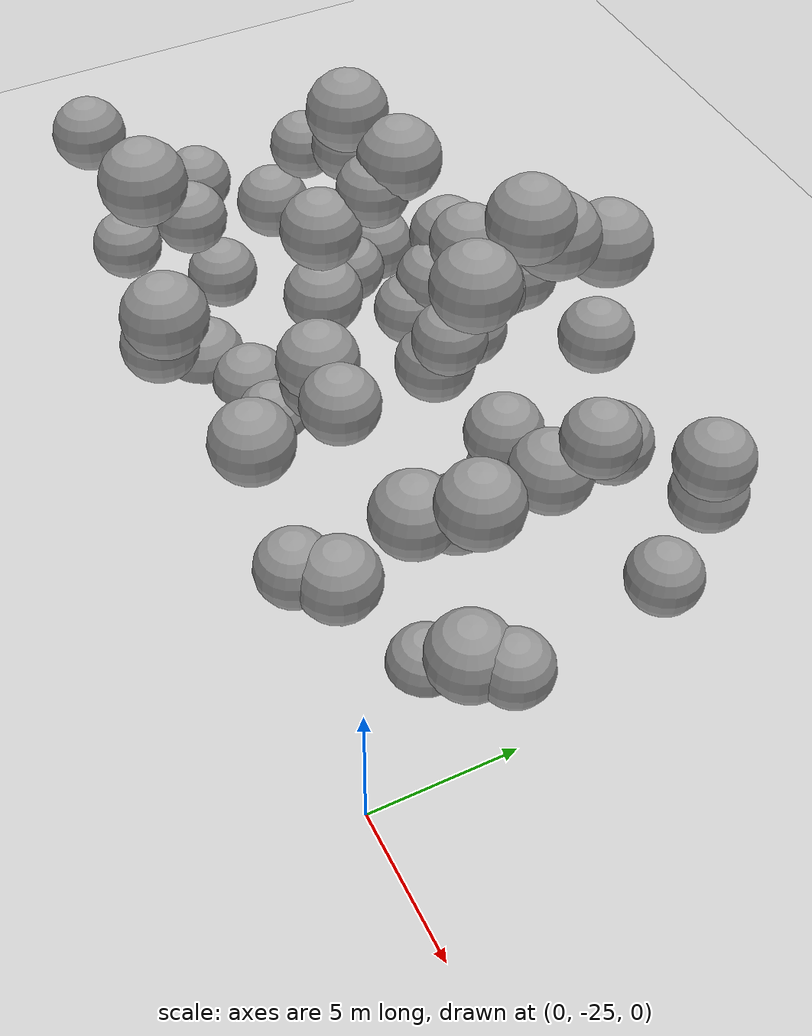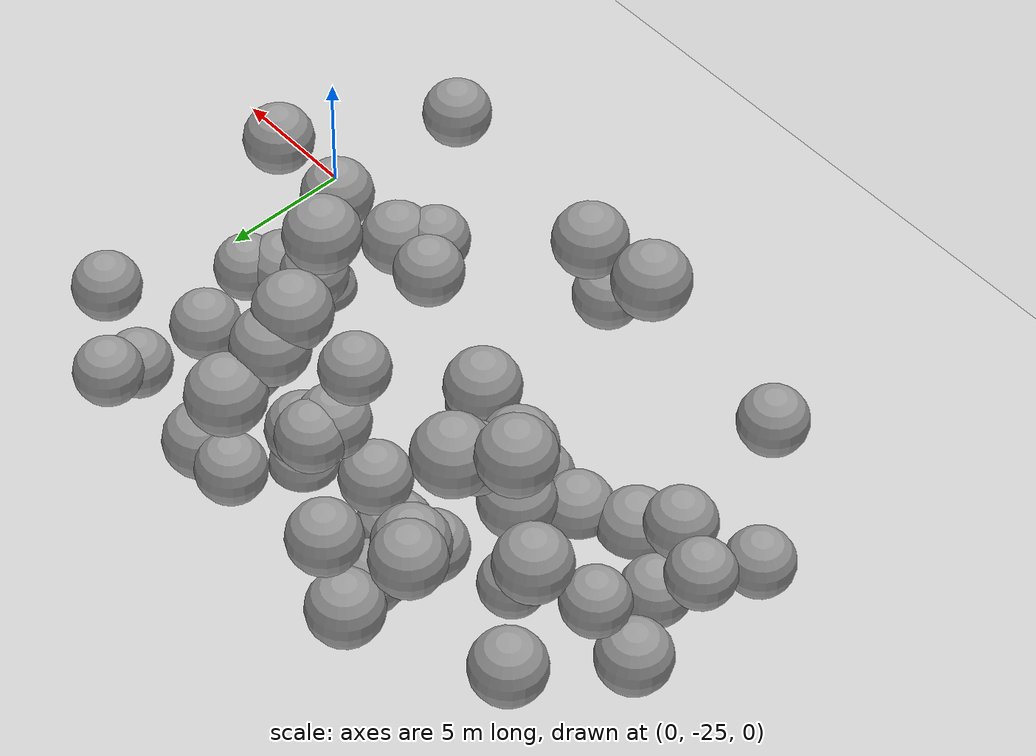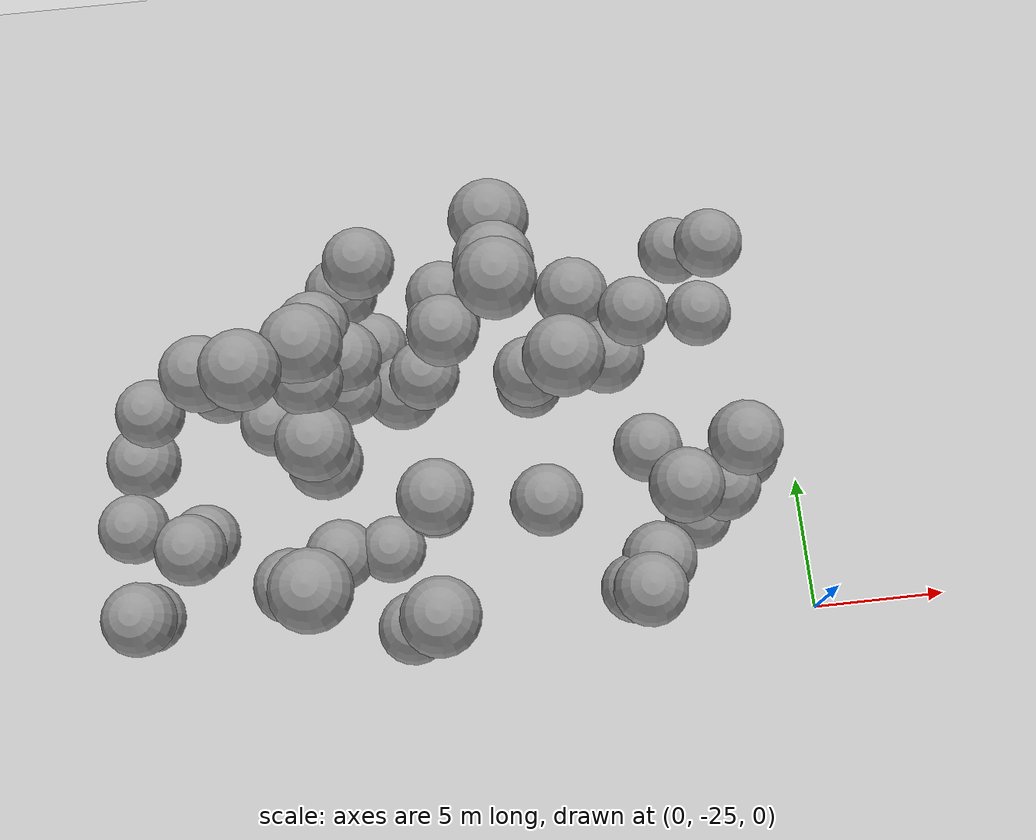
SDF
<sdf version="1.7">
 <world name="default">
  <model name="ground_plane">
   <static>1</static>
   <link name="link">
    <collision name="collision">
     <geometry><plane><normal>0 0 1</normal><size>100 100</size></plane></geometry>
     <surface>
      <contact><collide_bitmask>65535</collide_bitmask></contact>
      <friction><ode><mu>100</mu><mu2>50</mu2></ode></friction>
     </surface>
    </collision>
    <visual name="visual">
     <cast_shadows>0</cast_shadows>
     <geometry><plane><normal>0 0 1</normal><size>100 100</size></plane></geometry>
     <material>
      <script><uri>file://media/materials/scripts/gazebo.material</uri><name>Gazebo/Grey</name></script>
     </material>
    </visual>
   </link>
  </model>
  <model name="sphere_5">
   <static>1</static>
   <pose>-4 -11 3 0 0 0</pose>
   <link name="link">
    <inertial>
     <mass>911.1555626264419</mass>
     <inertia>
      <ixx>611.8643311993161</ixx>
      <iyy>611.8643311993161</iyy>
      <izz>611.8643311993161</izz>
      <ixy>0</ixy>
      <ixz>0</ixz>
      <iyz>0</iyz>
     </inertia>
    </inertial>
    <collision name="collision">
     <geometry><sphere><radius>1.2956905974533777</radius></sphere></geometry>
    </collision>
    <visual name="visual">
     <geometry><sphere><radius>1.2956905974533777</radius></sphere></geometry>
     <material>
      <script><uri>file://media/materials/scripts/gazebo.material</uri><name>Gazebo/Grey</name></script>
     </material>
    </visual>
   </link>
  </model>
  <model name="sphere_6">
   <static>1</static>
   <pose>-2 -19 1 0 0 0</pose>
   <link name="link">
    <inertial>
     <mass>893.9040352386924</mass>
     <inertia>
      <ixx>592.6783749071067</ixx>
      <iyy>592.6783749071067</iyy>
      <izz>592.6783749071067</izz>
      <ixy>0</ixy>
      <ixz>0</ixz>
      <iyz>0</iyz>
     </inertia>
    </inertial>
    <collision name="collision">
     <geometry><sphere><radius>1.2874610414067271</radius></sphere></geometry>
    </collision>
    <visual name="visual">
     <geometry><sphere><radius>1.2874610414067271</radius></sphere></geometry>
     <material>
      <script><uri>file://media/materials/scripts/gazebo.material</uri><name>Gazebo/Grey</name></script>
     </material>
    </visual>
   </link>
  </model>
  <model name="sphere_8">
   <static>1</static>
   <pose>-3 -20 8 0 0 0</pose>
   <link name="link">
    <inertial>
     <mass>945.1358322652695</mass>
     <inertia>
      <ixx>650.3662052603468</ixx>
      <iyy>650.3662052603468</iyy>
      <izz>650.3662052603468</izz>
      <ixy>0</ixy>
      <ixz>0</ixz>
      <iyz>0</iyz>
     </inertia>
    </inertial>
    <collision name="collision">
     <geometry><sphere><radius>1.3116014046180922</radius></sphere></geometry>
    </collision>
    <visual name="visual">
     <geometry><sphere><radius>1.3116014046180922</radius></sphere></geometry>
     <material>
      <script><uri>file://media/materials/scripts/gazebo.material</uri><name>Gazebo/Grey</name></script>
     </material>
    </visual>
   </link>
  </model>
  <model name="sphere_25">
   <static>1</static>
   <pose>-16 -13 1 0 0 0</pose>
   <link name="link">
    <inertial>
     <mass>1045.2013214133608</mass>
     <inertia>
      <ixx>769.1319196404364</ixx>
      <iyy>769.1319196404364</iyy>
      <izz>769.1319196404364</izz>
      <ixy>0</ixy>
      <ixz>0</ixz>
      <iyz>0</iyz>
     </inertia>
    </inertial>
    <collision name="collision">
     <geometry><sphere><radius>1.356345862552236</radius></sphere></geometry>
    </collision>
    <visual name="visual">
     <geometry><sphere><radius>1.356345862552236</radius></sphere></geometry>
     <material>
      <script><uri>file://media/materials/scripts/gazebo.material</uri><name>Gazebo/Grey</name></script>
     </material>
    </visual>
   </link>
  </model>
  <model name="sphere_35">
   <static>1</static>
   <pose>-6 -19 4 0 0 0</pose>
   <link name="link">
    <inertial>
     <mass>884.3200558352077</mass>
     <inertia>
      <ixx>582.125614726622</ixx>
      <iyy>582.125614726622</iyy>
      <izz>582.125614726622</izz>
      <ixy>0</ixy>
      <ixz>0</ixz>
      <iyz>0</iyz>
     </inertia>
    </inertial>
    <collision name="collision">
     <geometry><sphere><radius>1.2828433338973109</radius></sphere></geometry>
    </collision>
    <visual name="visual">
     <geometry><sphere><radius>1.2828433338973109</radius></sphere></geometry>
     <material>
      <script><uri>file://media/materials/scripts/gazebo.material</uri><name>Gazebo/Grey</name></script>
     </material>
    </visual>
   </link>
  </model>
  <model name="sphere_38">
   <static>1</static>
   <pose>-9 -17 10 0 0 0</pose>
   <link name="link">
    <inertial>
     <mass>1162.2410811386037</mass>
     <inertia>
      <ixx>917.9688735033643</ixx>
      <iyy>917.9688735033643</iyy>
      <izz>917.9688735033643</izz>
      <ixy>0</ixy>
      <ixz>0</ixz>
      <iyz>0</iyz>
     </inertia>
    </inertial>
    <collision name="collision">
     <geometry><sphere><radius>1.4051926546801257</radius></sphere></geometry>
    </collision>
    <visual name="visual">
     <geometry><sphere><radius>1.4051926546801257</radius></sphere></geometry>
     <material>
      <script><uri>file://media/materials/scripts/gazebo.material</uri><name>Gazebo/Grey</name></script>
     </material>
    </visual>
   </link>
  </model>
  <model name="sphere_39">
   <static>1</static>
   <pose>-18 -15 8 0 0 0</pose>
   <link name="link">
    <inertial>
     <mass>1377.4414114705146</mass>
     <inertia>
      <ixx>1218.3988421671536</ixx>
      <iyy>1218.3988421671536</iyy>
      <izz>1218.3988421671536</izz>
      <ixy>0</ixy>
      <ixz>0</ixz>
      <iyz>0</iyz>
     </inertia>
    </inertial>
    <collision name="collision">
     <geometry><sphere><radius>1.4870589165489836</radius></sphere></geometry>
    </collision>
    <visual name="visual">
     <geometry><sphere><radius>1.4870589165489836</radius></sphere></geometry>
     <material>
      <script><uri>file://media/materials/scripts/gazebo.material</uri><name>Gazebo/Grey</name></script>
     </material>
    </visual>
   </link>
  </model>
  <model name="sphere_40">
   <static>1</static>
   <pose>-18 -16 7 0 0 0</pose>
   <link name="link">
    <inertial>
     <mass>922.3497434669099</mass>
     <inertia>
      <ixx>624.444201708951</ixx>
      <iyy>624.444201708951</iyy>
      <izz>624.444201708951</izz>
      <ixy>0</ixy>
      <ixz>0</ixz>
      <iyz>0</iyz>
     </inertia>
    </inertial>
    <collision name="collision">
     <geometry><sphere><radius>1.3009751685084905</radius></sphere></geometry>
    </collision>
    <visual name="visual">
     <geometry><sphere><radius>1.3009751685084905</radius></sphere></geometry>
     <material>
      <script><uri>file://media/materials/scripts/gazebo.material</uri><name>Gazebo/Grey</name></script>
     </material>
    </visual>
   </link>
  </model>
  <model name="sphere_51">
   <static>1</static>
   <pose>-16 -11 5 0 0 0</pose>
   <link name="link">
    <inertial>
     <mass>1073.8779856586211</mass>
     <inertia>
      <ixx>804.6230771589888</ixx>
      <iyy>804.6230771589888</iyy>
      <izz>804.6230771589888</izz>
      <ixy>0</ixy>
      <ixz>0</ixz>
      <iyz>0</iyz>
     </inertia>
    </inertial>
    <collision name="collision">
     <geometry><sphere><radius>1.368638576050486</radius></sphere></geometry>
    </collision>
    <visual name="visual">
     <geometry><sphere><radius>1.368638576050486</radius></sphere></geometry>
     <material>
      <script><uri>file://media/materials/scripts/gazebo.material</uri><name>Gazebo/Grey</name></script>
     </material>
    </visual>
   </link>
  </model>
  <model name="sphere_53">
   <static>1</static>
   <pose>-15 -15 1 0 0 0</pose>
   <link name="link">
    <inertial>
     <mass>1354.9274839747143</mass>
     <inertia>
      <ixx>1185.3893078734147</ixx>
      <iyy>1185.3893078734147</iyy>
      <izz>1185.3893078734147</izz>
      <ixy>0</ixy>
      <ixz>0</ixz>
      <iyz>0</iyz>
     </inertia>
    </inertial>
    <collision name="collision">
     <geometry><sphere><radius>1.4789125044771454</radius></sphere></geometry>
    </collision>
    <visual name="visual">
     <geometry><sphere><radius>1.4789125044771454</radius></sphere></geometry>
     <material>
      <script><uri>file://media/materials/scripts/gazebo.material</uri><name>Gazebo/Grey</name></script>
     </material>
    </visual>
   </link>
  </model>
  <model name="sphere_60">
   <static>1</static>
   <pose>-18 -13 4 0 0 0</pose>
   <link name="link">
    <inertial>
     <mass>1160.830830830135</mass>
     <inertia>
      <ixx>916.1132025450657</ixx>
      <iyy>916.1132025450657</iyy>
      <izz>916.1132025450657</izz>
      <ixy>0</ixy>
      <ixz>0</ixz>
      <iyz>0</iyz>
     </inertia>
    </inertial>
    <collision name="collision">
     <geometry><sphere><radius>1.404624076307113</radius></sphere></geometry>
    </collision>
    <visual name="visual">
     <geometry><sphere><radius>1.404624076307113</radius></sphere></geometry>
     <material>
      <script><uri>file://media/materials/scripts/gazebo.material</uri><name>Gazebo/Grey</name></script>
     </material>
    </visual>
   </link>
  </model>
  <model name="sphere_63">
   <static>1</static>
   <pose>-23 -20 1 0 0 0</pose>
   <link name="link">
    <inertial>
     <mass>977.3608881718029</mass>
     <inertia>
      <ixx>687.7424704604394</ixx>
      <iyy>687.7424704604394</iyy>
      <izz>687.7424704604394</izz>
      <ixy>0</ixy>
      <ixz>0</ixz>
      <iyz>0</iyz>
     </inertia>
    </inertial>
    <collision name="collision">
     <geometry><sphere><radius>1.326341775569964</radius></sphere></geometry>
    </collision>
    <visual name="visual">
     <geometry><sphere><radius>1.326341775569964</radius></sphere></geometry>
     <material>
      <script><uri>file://media/materials/scripts/gazebo.material</uri><name>Gazebo/Grey</name></script>
     </material>
    </visual>
   </link>
  </model>
  <model name="sphere_65">
   <static>1</static>
   <pose>-11 -11 4 0 0 0</pose>
   <link name="link">
    <inertial>
     <mass>949.8453656346155</mass>
     <inertia>
      <ixx>655.7763728729146</ixx>
      <iyy>655.7763728729146</iyy>
      <izz>655.7763728729146</izz>
      <ixy>0</ixy>
      <ixz>0</ixz>
      <iyz>0</iyz>
     </inertia>
    </inertial>
    <collision name="collision">
     <geometry><sphere><radius>1.3137763297464053</radius></sphere></geometry>
    </collision>
    <visual name="visual">
     <geometry><sphere><radius>1.3137763297464053</radius></sphere></geometry>
     <material>
      <script><uri>file://media/materials/scripts/gazebo.material</uri><name>Gazebo/Grey</name></script>
     </material>
    </visual>
   </link>
  </model>
  <model name="sphere_68">
   <static>1</static>
   <pose>-13 -15 8 0 0 0</pose>
   <link name="link">
    <inertial>
     <mass>889.6442853559538</mass>
     <inertia>
      <ixx>587.9786735075774</ixx>
      <iyy>587.9786735075774</iyy>
      <izz>587.9786735075774</izz>
      <ixy>0</ixy>
      <ixz>0</ixz>
      <iyz>0</iyz>
     </inertia>
    </inertial>
    <collision name="collision">
     <geometry><sphere><radius>1.2854127243675526</radius></sphere></geometry>
    </collision>
    <visual name="visual">
     <geometry><sphere><radius>1.2854127243675526</radius></sphere></geometry>
     <material>
      <script><uri>file://media/materials/scripts/gazebo.material</uri><name>Gazebo/Grey</name></script>
     </material>
    </visual>
   </link>
  </model>
  <model name="sphere_73">
   <static>1</static>
   <pose>-6 -23 3 0 0 0</pose>
   <link name="link">
    <inertial>
     <mass>1163.2664304838072</mass>
     <inertia>
      <ixx>919.3190172958765</ixx>
      <iyy>919.3190172958765</iyy>
      <izz>919.3190172958765</izz>
      <ixy>0</ixy>
      <ixz>0</ixz>
      <iyz>0</iyz>
     </inertia>
    </inertial>
    <collision name="collision">
     <geometry><sphere><radius>1.4056057617069213</radius></sphere></geometry>
    </collision>
    <visual name="visual">
     <geometry><sphere><radius>1.4056057617069213</radius></sphere></geometry>
     <material>
      <script><uri>file://media/materials/scripts/gazebo.material</uri><name>Gazebo/Grey</name></script>
     </material>
    </visual>
   </link>
  </model>
  <model name="sphere_77">
   <static>1</static>
   <pose>-13 -14 6 0 0 0</pose>
   <link name="link">
    <inertial>
     <mass>1028.2679193336114</mass>
     <inertia>
      <ixx>748.4763163663445</ixx>
      <iyy>748.4763163663445</iyy>
      <izz>748.4763163663445</izz>
      <ixy>0</ixy>
      <ixz>0</ixz>
      <iyz>0</iyz>
     </inertia>
    </inertial>
    <collision name="collision">
     <geometry><sphere><radius>1.3489811851843174</radius></sphere></geometry>
    </collision>
    <visual name="visual">
     <geometry><sphere><radius>1.3489811851843174</radius></sphere></geometry>
     <material>
      <script><uri>file://media/materials/scripts/gazebo.material</uri><name>Gazebo/Grey</name></script>
     </material>
    </visual>
   </link>
  </model>
  <model name="sphere_80">
   <static>1</static>
   <pose>-6 -14 5 0 0 0</pose>
   <link name="link">
    <inertial>
     <mass>921.3966795918016</mass>
     <inertia>
      <ixx>623.3691752941496</ixx>
      <iyy>623.3691752941496</iyy>
      <izz>623.3691752941496</izz>
      <ixy>0</ixy>
      <ixz>0</ixz>
      <iyz>0</iyz>
     </inertia>
    </inertial>
    <collision name="collision">
     <geometry><sphere><radius>1.3005269149196703</radius></sphere></geometry>
    </collision>
    <visual name="visual">
     <geometry><sphere><radius>1.3005269149196703</radius></sphere></geometry>
     <material>
      <script><uri>file://media/materials/scripts/gazebo.material</uri><name>Gazebo/Grey</name></script>
     </material>
    </visual>
   </link>
  </model>
  <model name="sphere_83">
   <static>1</static>
   <pose>-11 -14 10 0 0 0</pose>
   <link name="link">
    <inertial>
     <mass>1231.7336196422557</mass>
     <inertia>
      <ixx>1011.2586378450968</ixx>
      <iyy>1011.2586378450968</iyy>
      <izz>1011.2586378450968</izz>
      <ixy>0</ixy>
      <ixz>0</ixz>
      <iyz>0</iyz>
     </inertia>
    </inertial>
    <collision name="collision">
     <geometry><sphere><radius>1.4326586580567289</radius></sphere></geometry>
    </collision>
    <visual name="visual">
     <geometry><sphere><radius>1.4326586580567289</radius></sphere></geometry>
     <material>
      <script><uri>file://media/materials/scripts/gazebo.material</uri><name>Gazebo/Grey</name></script>
     </material>
    </visual>
   </link>
  </model>
  <model name="sphere_89">
   <static>1</static>
   <pose>-20 -16 2 0 0 0</pose>
   <link name="link">
    <inertial>
     <mass>840.1030949596272</mass>
     <inertia>
      <ixx>534.4272071992054</ixx>
      <iyy>534.4272071992054</iyy>
      <izz>534.4272071992054</izz>
      <ixy>0</ixy>
      <ixz>0</ixz>
      <iyz>0</iyz>
     </inertia>
    </inertial>
    <collision name="collision">
     <geometry><sphere><radius>1.2610955458753215</radius></sphere></geometry>
    </collision>
    <visual name="visual">
     <geometry><sphere><radius>1.2610955458753215</radius></sphere></geometry>
     <material>
      <script><uri>file://media/materials/scripts/gazebo.material</uri><name>Gazebo/Grey</name></script>
     </material>
    </visual>
   </link>
  </model>
  <model name="sphere_92">
   <static>1</static>
   <pose>-3 -12 6 0 0 0</pose>
   <link name="link">
    <inertial>
     <mass>863.3152283405723</mass>
     <inertia>
      <ixx>559.2636437311609</ixx>
      <iyy>559.2636437311609</iyy>
      <izz>559.2636437311609</izz>
      <ixy>0</ixy>
      <ixz>0</ixz>
      <iyz>0</iyz>
     </inertia>
    </inertial>
    <collision name="collision">
     <geometry><sphere><radius>1.2726049186223154</radius></sphere></geometry>
    </collision>
    <visual name="visual">
     <geometry><sphere><radius>1.2726049186223154</radius></sphere></geometry>
     <material>
      <script><uri>file://media/materials/scripts/gazebo.material</uri><name>Gazebo/Grey</name></script>
     </material>
    </visual>
   </link>
  </model>
  <model name="sphere_103">
   <static>1</static>
   <pose>-4 -21 0 0 0 0</pose>
   <link name="link">
    <inertial>
     <mass>901.3773591791768</mass>
     <inertia>
      <ixx>600.9596692286186</ixx>
      <iyy>600.9596692286186</iyy>
      <izz>600.9596692286186</izz>
      <ixy>0</ixy>
      <ixz>0</ixz>
      <iyz>0</iyz>
     </inertia>
    </inertial>
    <collision name="collision">
     <geometry><sphere><radius>1.291038951203242</radius></sphere></geometry>
    </collision>
    <visual name="visual">
     <geometry><sphere><radius>1.291038951203242</radius></sphere></geometry>
     <material>
      <script><uri>file://media/materials/scripts/gazebo.material</uri><name>Gazebo/Grey</name></script>
     </material>
    </visual>
   </link>
  </model>
  <model name="sphere_124">
   <static>1</static>
   <pose>-22 -14 1 0 0 0</pose>
   <link name="link">
    <inertial>
     <mass>1256.7233640832503</mass>
     <inertia>
      <ixx>1045.683849742905</ixx>
      <iyy>1045.683849742905</iyy>
      <izz>1045.683849742905</izz>
      <ixy>0</ixy>
      <ixz>0</ixz>
      <iyz>0</iyz>
     </inertia>
    </inertial>
    <collision name="collision">
     <geometry><sphere><radius>1.442282586232885</radius></sphere></geometry>
    </collision>
    <visual name="visual">
     <geometry><sphere><radius>1.442282586232885</radius></sphere></geometry>
     <material>
      <script><uri>file://media/materials/scripts/gazebo.material</uri><name>Gazebo/Grey</name></script>
     </material>
    </visual>
   </link>
  </model>
  <model name="sphere_131">
   <static>1</static>
   <pose>-17 -11 2 0 0 0</pose>
   <link name="link">
    <inertial>
     <mass>1249.974844617768</mass>
     <inertia>
      <ixx>1036.3418591332909</ixx>
      <iyy>1036.3418591332909</iyy>
      <izz>1036.3418591332909</izz>
      <ixy>0</ixy>
      <ixz>0</ixz>
      <iyz>0</iyz>
     </inertia>
    </inertial>
    <collision name="collision">
     <geometry><sphere><radius>1.4396962979833468</radius></sphere></geometry>
    </collision>
    <visual name="visual">
     <geometry><sphere><radius>1.4396962979833468</radius></sphere></geometry>
     <material>
      <script><uri>file://media/materials/scripts/gazebo.material</uri><name>Gazebo/Grey</name></script>
     </material>
    </visual>
   </link>
  </model>
  <model name="sphere_149">
   <static>1</static>
   <pose>-14 -25 8 0 0 0</pose>
   <link name="link">
    <inertial>
     <mass>1130.8321184304377</mass>
     <inertia>
      <ixx>876.9963990948088</ixx>
      <iyy>876.9963990948088</iyy>
      <izz>876.9963990948088</izz>
      <ixy>0</ixy>
      <ixz>0</ixz>
      <iyz>0</iyz>
     </inertia>
    </inertial>
    <collision name="collision">
     <geometry><sphere><radius>1.3924186831362522</radius></sphere></geometry>
    </collision>
    <visual name="visual">
     <geometry><sphere><radius>1.3924186831362522</radius></sphere></geometry>
     <material>
      <script><uri>file://media/materials/scripts/gazebo.material</uri><name>Gazebo/Grey</name></script>
     </material>
    </visual>
   </link>
  </model>
  <model name="sphere_153">
   <static>1</static>
   <pose>-3 -13 1 0 0 0</pose>
   <link name="link">
    <inertial>
     <mass>942.2691123855249</mass>
     <inertia>
      <ixx>647.081788313606</ixx>
      <iyy>647.081788313606</iyy>
      <izz>647.081788313606</izz>
      <ixy>0</ixy>
      <ixz>0</ixz>
      <iyz>0</iyz>
     </inertia>
    </inertial>
    <collision name="collision">
     <geometry><sphere><radius>1.310273975752677</radius></sphere></geometry>
    </collision>
    <visual name="visual">
     <geometry><sphere><radius>1.310273975752677</radius></sphere></geometry>
     <material>
      <script><uri>file://media/materials/scripts/gazebo.material</uri><name>Gazebo/Grey</name></script>
     </material>
    </visual>
   </link>
  </model>
  <model name="sphere_159">
   <static>1</static>
   <pose>-7 -25 9 0 0 0</pose>
   <link name="link">
    <inertial>
     <mass>820.6570170634656</mass>
     <inertia>
      <ixx>513.969164047227</ixx>
      <iyy>513.969164047227</iyy>
      <izz>513.969164047227</izz>
      <ixy>0</ixy>
      <ixz>0</ixz>
      <iyz>0</iyz>
     </inertia>
    </inertial>
    <collision name="collision">
     <geometry><sphere><radius>1.251289189983426</radius></sphere></geometry>
    </collision>
    <visual name="visual">
     <geometry><sphere><radius>1.251289189983426</radius></sphere></geometry>
     <material>
      <script><uri>file://media/materials/scripts/gazebo.material</uri><name>Gazebo/Grey</name></script>
     </material>
    </visual>
   </link>
  </model>
  <model name="sphere_166">
   <static>1</static>
   <pose>-11 -11 8 0 0 0</pose>
   <link name="link">
    <inertial>
     <mass>1296.551278133692</mass>
     <inertia>
      <ixx>1101.4980885561897</ixx>
      <iyy>1101.4980885561897</iyy>
      <izz>1101.4980885561897</izz>
      <ixy>0</ixy>
      <ixz>0</ixz>
      <iyz>0</iyz>
     </inertia>
    </inertial>
    <collision name="collision">
     <geometry><sphere><radius>1.4573606178664793</radius></sphere></geometry>
    </collision>
    <visual name="visual">
     <geometry><sphere><radius>1.4573606178664793</radius></sphere></geometry>
     <material>
      <script><uri>file://media/materials/scripts/gazebo.material</uri><name>Gazebo/Grey</name></script>
     </material>
    </visual>
   </link>
  </model>
  <model name="sphere_167">
   <static>1</static>
   <pose>-14 -20 3 0 0 0</pose>
   <link name="link">
    <inertial>
     <mass>999.4042564148427</mass>
     <inertia>
      <ixx>713.7885488333205</ixx>
      <iyy>713.7885488333205</iyy>
      <izz>713.7885488333205</izz>
      <ixy>0</ixy>
      <ixz>0</ixz>
      <iyz>0</iyz>
     </inertia>
    </inertial>
    <collision name="collision">
     <geometry><sphere><radius>1.3362391601659955</radius></sphere></geometry>
    </collision>
    <visual name="visual">
     <geometry><sphere><radius>1.3362391601659955</radius></sphere></geometry>
     <material>
      <script><uri>file://media/materials/scripts/gazebo.material</uri><name>Gazebo/Grey</name></script>
     </material>
    </visual>
   </link>
  </model>
  <model name="sphere_168">
   <static>1</static>
   <pose>-17 -14 3 0 0 0</pose>
   <link name="link">
    <inertial>
     <mass>1265.3470597630223</mass>
     <inertia>
      <ixx>1057.6704046217942</ixx>
      <iyy>1057.6704046217942</iyy>
      <izz>1057.6704046217942</izz>
      <ixy>0</ixy>
      <ixz>0</ixz>
      <iyz>0</iyz>
     </inertia>
    </inertial>
    <collision name="collision">
     <geometry><sphere><radius>1.445574072866451</radius></sphere></geometry>
    </collision>
    <visual name="visual">
     <geometry><sphere><radius>1.445574072866451</radius></sphere></geometry>
     <material>
      <script><uri>file://media/materials/scripts/gazebo.material</uri><name>Gazebo/Grey</name></script>
     </material>
    </visual>
   </link>
  </model>
  <model name="sphere_174">
   <static>1</static>
   <pose>-23 -21 4 0 0 0</pose>
   <link name="link">
    <inertial>
     <mass>956.5801504390647</mass>
     <inertia>
      <ixx>663.54420363382</ixx>
      <iyy>663.54420363382</iyy>
      <izz>663.54420363382</izz>
      <ixy>0</ixy>
      <ixz>0</ixz>
      <iyz>0</iyz>
     </inertia>
    </inertial>
    <collision name="collision">
     <geometry><sphere><radius>1.3168740869216475</radius></sphere></geometry>
    </collision>
    <visual name="visual">
     <geometry><sphere><radius>1.3168740869216475</radius></sphere></geometry>
     <material>
      <script><uri>file://media/materials/scripts/gazebo.material</uri><name>Gazebo/Grey</name></script>
     </material>
    </visual>
   </link>
  </model>
  <model name="sphere_185">
   <static>1</static>
   <pose>-25 -23 2 0 0 0</pose>
   <link name="link">
    <inertial>
     <mass>924.4736148368235</mass>
     <inertia>
      <ixx>626.8425270676964</ixx>
      <iyy>626.8425270676964</iyy>
      <izz>626.8425270676964</izz>
      <ixy>0</ixy>
      <ixz>0</ixz>
      <iyz>0</iyz>
     </inertia>
    </inertial>
    <collision name="collision">
     <geometry><sphere><radius>1.301972977202633</radius></sphere></geometry>
    </collision>
    <visual name="visual">
     <geometry><sphere><radius>1.301972977202633</radius></sphere></geometry>
     <material>
      <script><uri>file://media/materials/scripts/gazebo.material</uri><name>Gazebo/Grey</name></script>
     </material>
    </visual>
   </link>
  </model>
  <model name="sphere_189">
   <static>1</static>
   <pose>-10 -15 2 0 0 0</pose>
   <link name="link">
    <inertial>
     <mass>1134.550385412577</mass>
     <inertia>
      <ixx>881.8077226000629</ixx>
      <iyy>881.8077226000629</iyy>
      <izz>881.8077226000629</izz>
      <ixy>0</ixy>
      <ixz>0</ixz>
      <iyz>0</iyz>
     </inertia>
    </inertial>
    <collision name="collision">
     <geometry><sphere><radius>1.393943141724894</radius></sphere></geometry>
    </collision>
    <visual name="visual">
     <geometry><sphere><radius>1.393943141724894</radius></sphere></geometry>
     <material>
      <script><uri>file://media/materials/scripts/gazebo.material</uri><name>Gazebo/Grey</name></script>
     </material>
    </visual>
   </link>
  </model>
  <model name="sphere_190">
   <static>1</static>
   <pose>-5 -21 6 0 0 0</pose>
   <link name="link">
    <inertial>
     <mass>1059.1025712089297</mass>
     <inertia>
      <ixx>786.2565729828184</ixx>
      <iyy>786.2565729828184</iyy>
      <izz>786.2565729828184</izz>
      <ixy>0</ixy>
      <ixz>0</ixz>
      <iyz>0</iyz>
     </inertia>
    </inertial>
    <collision name="collision">
     <geometry><sphere><radius>1.362332563862887</radius></sphere></geometry>
    </collision>
    <visual name="visual">
     <geometry><sphere><radius>1.362332563862887</radius></sphere></geometry>
     <material>
      <script><uri>file://media/materials/scripts/gazebo.material</uri><name>Gazebo/Grey</name></script>
     </material>
    </visual>
   </link>
  </model>
  <model name="sphere_194">
   <static>1</static>
   <pose>-24 -24 8 0 0 0</pose>
   <link name="link">
    <inertial>
     <mass>838.7634038302405</mass>
     <inertia>
      <ixx>533.007566468487</ixx>
      <iyy>533.007566468487</iyy>
      <izz>533.007566468487</izz>
      <ixy>0</ixy>
      <ixz>0</ixz>
      <iyz>0</iyz>
     </inertia>
    </inertial>
    <collision name="collision">
     <geometry><sphere><radius>1.260424843521875</radius></sphere></geometry>
    </collision>
    <visual name="visual">
     <geometry><sphere><radius>1.260424843521875</radius></sphere></geometry>
     <material>
      <script><uri>file://media/materials/scripts/gazebo.material</uri><name>Gazebo/Grey</name></script>
     </material>
    </visual>
   </link>
  </model>
  <model name="sphere_220">
   <static>1</static>
   <pose>-10 -15 0 0 0 0</pose>
   <link name="link">
    <inertial>
     <mass>933.2140226749144</mass>
     <inertia>
      <ixx>636.7510626513365</ixx>
      <iyy>636.7510626513365</iyy>
      <izz>636.7510626513365</izz>
      <ixy>0</ixy>
      <ixz>0</ixz>
      <iyz>0</iyz>
     </inertia>
    </inertial>
    <collision name="collision">
     <geometry><sphere><radius>1.3060632683619116</radius></sphere></geometry>
    </collision>
    <visual name="visual">
     <geometry><sphere><radius>1.3060632683619116</radius></sphere></geometry>
     <material>
      <script><uri>file://media/materials/scripts/gazebo.material</uri><name>Gazebo/Grey</name></script>
     </material>
    </visual>
   </link>
  </model>
  <model name="sphere_222">
   <static>1</static>
   <pose>-7 -24 3 0 0 0</pose>
   <link name="link">
    <inertial>
     <mass>920.2816425048006</mass>
     <inertia>
      <ixx>622.1123888285663</ixx>
      <iyy>622.1123888285663</iyy>
      <izz>622.1123888285663</izz>
      <ixy>0</ixy>
      <ixz>0</ixz>
      <iyz>0</iyz>
     </inertia>
    </inertial>
    <collision name="collision">
     <geometry><sphere><radius>1.300002088087477</radius></sphere></geometry>
    </collision>
    <visual name="visual">
     <geometry><sphere><radius>1.300002088087477</radius></sphere></geometry>
     <material>
      <script><uri>file://media/materials/scripts/gazebo.material</uri><name>Gazebo/Grey</name></script>
     </material>
    </visual>
   </link>
  </model>
  <model name="sphere_224">
   <static>1</static>
   <pose>-18 -18 3 0 0 0</pose>
   <link name="link">
    <inertial>
     <mass>1230.781915568143</mass>
     <inertia>
      <ixx>1009.9567179918389</ixx>
      <iyy>1009.9567179918389</iyy>
      <izz>1009.9567179918389</izz>
      <ixy>0</ixy>
      <ixz>0</ixz>
      <iyz>0</iyz>
     </inertia>
    </inertial>
    <collision name="collision">
     <geometry><sphere><radius>1.4322895797718416</radius></sphere></geometry>
    </collision>
    <visual name="visual">
     <geometry><sphere><radius>1.4322895797718416</radius></sphere></geometry>
     <material>
      <script><uri>file://media/materials/scripts/gazebo.material</uri><name>Gazebo/Grey</name></script>
     </material>
    </visual>
   </link>
  </model>
  <model name="sphere_226">
   <static>1</static>
   <pose>-14 -20 4 0 0 0</pose>
   <link name="link">
    <inertial>
     <mass>1234.470038156106</mass>
     <inertia>
      <ixx>1015.0057624023381</ixx>
      <iyy>1015.0057624023381</iyy>
      <izz>1015.0057624023381</izz>
      <ixy>0</ixy>
      <ixz>0</ixz>
      <iyz>0</iyz>
     </inertia>
    </inertial>
    <collision name="collision">
     <geometry><sphere><radius>1.4337188045147164</radius></sphere></geometry>
    </collision>
    <visual name="visual">
     <geometry><sphere><radius>1.4337188045147164</radius></sphere></geometry>
     <material>
      <script><uri>file://media/materials/scripts/gazebo.material</uri><name>Gazebo/Grey</name></script>
     </material>
    </visual>
   </link>
  </model>
  <model name="sphere_231">
   <static>1</static>
   <pose>-15 -25 6 0 0 0</pose>
   <link name="link">
    <inertial>
     <mass>879.5954447800574</mass>
     <inertia>
      <ixx>576.9513640097988</ixx>
      <iyy>576.9513640097988</iyy>
      <izz>576.9513640097988</izz>
      <ixy>0</ixy>
      <ixz>0</ixz>
      <iyz>0</iyz>
     </inertia>
    </inertial>
    <collision name="collision">
     <geometry><sphere><radius>1.2805546595930526</radius></sphere></geometry>
    </collision>
    <visual name="visual">
     <geometry><sphere><radius>1.2805546595930526</radius></sphere></geometry>
     <material>
      <script><uri>file://media/materials/scripts/gazebo.material</uri><name>Gazebo/Grey</name></script>
     </material>
    </visual>
   </link>
  </model>
  <model name="sphere_234">
   <static>1</static>
   <pose>-13 -13 6 0 0 0</pose>
   <link name="link">
    <inertial>
     <mass>923.9202631059367</mass>
     <inertia>
      <ixx>626.2173150895103</ixx>
      <iyy>626.2173150895103</iyy>
      <izz>626.2173150895103</izz>
      <ixy>0</ixy>
      <ixz>0</ixz>
      <iyz>0</iyz>
     </inertia>
    </inertial>
    <collision name="collision">
     <geometry><sphere><radius>1.3017131562694264</radius></sphere></geometry>
    </collision>
    <visual name="visual">
     <geometry><sphere><radius>1.3017131562694264</radius></sphere></geometry>
     <material>
      <script><uri>file://media/materials/scripts/gazebo.material</uri><name>Gazebo/Grey</name></script>
     </material>
    </visual>
   </link>
  </model>
  <model name="sphere_238">
   <static>1</static>
   <pose>-25 -20 4 0 0 0</pose>
   <link name="link">
    <inertial>
     <mass>885.9288442950307</mass>
     <inertia>
      <ixx>583.8917263772539</ixx>
      <iyy>583.8917263772539</iyy>
      <izz>583.8917263772539</izz>
      <ixy>0</ixy>
      <ixz>0</ixz>
      <iyz>0</iyz>
     </inertia>
    </inertial>
    <collision name="collision">
     <geometry><sphere><radius>1.2836207949807357</radius></sphere></geometry>
    </collision>
    <visual name="visual">
     <geometry><sphere><radius>1.2836207949807357</radius></sphere></geometry>
     <material>
      <script><uri>file://media/materials/scripts/gazebo.material</uri><name>Gazebo/Grey</name></script>
     </material>
    </visual>
   </link>
  </model>
  <model name="sphere_245">
   <static>1</static>
   <pose>-18 -24 10 0 0 0</pose>
   <link name="link">
    <inertial>
     <mass>1185.3792673872454</mass>
     <inertia>
      <ixx>948.6291451116609</ixx>
      <iyy>948.6291451116609</iyy>
      <izz>948.6291451116609</izz>
      <ixy>0</ixy>
      <ixz>0</ixz>
      <iyz>0</iyz>
     </inertia>
    </inertial>
    <collision name="collision">
     <geometry><sphere><radius>1.4144564244814253</radius></sphere></geometry>
    </collision>
    <visual name="visual">
     <geometry><sphere><radius>1.4144564244814253</radius></sphere></geometry>
     <material>
      <script><uri>file://media/materials/scripts/gazebo.material</uri><name>Gazebo/Grey</name></script>
     </material>
    </visual>
   </link>
  </model>
  <model name="sphere_248">
   <static>1</static>
   <pose>-14 -15 3 0 0 0</pose>
   <link name="link">
    <inertial>
     <mass>1027.988178920419</mass>
     <inertia>
      <ixx>748.136975353667</ixx>
      <iyy>748.136975353667</iyy>
      <izz>748.136975353667</izz>
      <ixy>0</ixy>
      <ixz>0</ixz>
      <iyz>0</iyz>
     </inertia>
    </inertial>
    <collision name="collision">
     <geometry><sphere><radius>1.348858843923867</radius></sphere></geometry>
    </collision>
    <visual name="visual">
     <geometry><sphere><radius>1.348858843923867</radius></sphere></geometry>
     <material>
      <script><uri>file://media/materials/scripts/gazebo.material</uri><name>Gazebo/Grey</name></script>
     </material>
    </visual>
   </link>
  </model>
  <model name="sphere_254">
   <static>1</static>
   <pose>-3 -20 1 0 0 0</pose>
   <link name="link">
    <inertial>
     <mass>1412.608175476296</mass>
     <inertia>
      <ixx>1270.682681386973</ixx>
      <iyy>1270.682681386973</iyy>
      <izz>1270.682681386973</izz>
      <ixy>0</ixy>
      <ixz>0</ixz>
      <iyz>0</iyz>
     </inertia>
    </inertial>
    <collision name="collision">
     <geometry><sphere><radius>1.4996078392134933</radius></sphere></geometry>
    </collision>
    <visual name="visual">
     <geometry><sphere><radius>1.4996078392134933</radius></sphere></geometry>
     <material>
      <script><uri>file://media/materials/scripts/gazebo.material</uri><name>Gazebo/Grey</name></script>
     </material>
    </visual>
   </link>
  </model>
  <model name="sphere_260">
   <static>1</static>
   <pose>-24 -16 5 0 0 0</pose>
   <link name="link">
    <inertial>
     <mass>828.3427219740391</mass>
     <inertia>
      <ixx>522.0166473706668</ixx>
      <iyy>522.0166473706668</iyy>
      <izz>522.0166473706668</izz>
      <ixy>0</ixy>
      <ixz>0</ixz>
      <iyz>0</iyz>
     </inertia>
    </inertial>
    <collision name="collision">
     <geometry><sphere><radius>1.2551832944761943</radius></sphere></geometry>
    </collision>
    <visual name="visual">
     <geometry><sphere><radius>1.2551832944761943</radius></sphere></geometry>
     <material>
      <script><uri>file://media/materials/scripts/gazebo.material</uri><name>Gazebo/Grey</name></script>
     </material>
    </visual>
   </link>
  </model>
  <model name="sphere_262">
   <static>1</static>
   <pose>-25 -17 2 0 0 0</pose>
   <link name="link">
    <inertial>
     <mass>1149.622979192875</mass>
     <inertia>
      <ixx>901.4188701507913</ixx>
      <iyy>901.4188701507913</iyy>
      <izz>901.4188701507913</izz>
      <ixy>0</ixy>
      <ixz>0</ixz>
      <iyz>0</iyz>
     </inertia>
    </inertial>
    <collision name="collision">
     <geometry><sphere><radius>1.4000888884818155</radius></sphere></geometry>
    </collision>
    <visual name="visual">
     <geometry><sphere><radius>1.4000888884818155</radius></sphere></geometry>
     <material>
      <script><uri>file://media/materials/scripts/gazebo.material</uri><name>Gazebo/Grey</name></script>
     </material>
    </visual>
   </link>
  </model>
  <model name="sphere_267">
   <static>1</static>
   <pose>-17 -15 2 0 0 0</pose>
   <link name="link">
    <inertial>
     <mass>986.5705885362918</mass>
     <inertia>
      <ixx>698.5773903646511</ixx>
      <iyy>698.5773903646511</iyy>
      <izz>698.5773903646511</izz>
      <ixy>0</ixy>
      <ixz>0</ixz>
      <iyz>0</iyz>
     </inertia>
    </inertial>
    <collision name="collision">
     <geometry><sphere><radius>1.3304948105407899</radius></sphere></geometry>
    </collision>
    <visual name="visual">
     <geometry><sphere><radius>1.3304948105407899</radius></sphere></geometry>
     <material>
      <script><uri>file://media/materials/scripts/gazebo.material</uri><name>Gazebo/Grey</name></script>
     </material>
    </visual>
   </link>
  </model>
  <model name="sphere_272">
   <static>1</static>
   <pose>-18 -18 6 0 0 0</pose>
   <link name="link">
    <inertial>
     <mass>1231.5589153889514</mass>
     <inertia>
      <ixx>1011.0195942327829</ixx>
      <iyy>1011.0195942327829</iyy>
      <izz>1011.0195942327829</izz>
      <ixy>0</ixy>
      <ixz>0</ixz>
      <iyz>0</iyz>
     </inertia>
    </inertial>
    <collision name="collision">
     <geometry><sphere><radius>1.4325909206305263</radius></sphere></geometry>
    </collision>
    <visual name="visual">
     <geometry><sphere><radius>1.4325909206305263</radius></sphere></geometry>
     <material>
      <script><uri>file://media/materials/scripts/gazebo.material</uri><name>Gazebo/Grey</name></script>
     </material>
    </visual>
   </link>
  </model>
  <model name="sphere_283">
   <static>1</static>
   <pose>-11 -13 9 0 0 0</pose>
   <link name="link">
    <inertial>
     <mass>1236.6080186279441</mass>
     <inertia>
      <ixx>1017.9372700789276</ixx>
      <iyy>1017.9372700789276</iyy>
      <izz>1017.9372700789276</izz>
      <ixy>0</ixy>
      <ixz>0</ixz>
      <iyz>0</iyz>
     </inertia>
    </inertial>
    <collision name="collision">
     <geometry><sphere><radius>1.4345460137176993</radius></sphere></geometry>
    </collision>
    <visual name="visual">
     <geometry><sphere><radius>1.4345460137176993</radius></sphere></geometry>
     <material>
      <script><uri>file://media/materials/scripts/gazebo.material</uri><name>Gazebo/Grey</name></script>
     </material>
    </visual>
   </link>
  </model>
  <model name="sphere_287">
   <static>1</static>
   <pose>-18 -21 0 0 0 0</pose>
   <link name="link">
    <inertial>
     <mass>1166.8868149584841</mass>
     <inertia>
      <ixx>924.0925582023176</ixx>
      <iyy>924.0925582023176</iyy>
      <izz>924.0925582023176</izz>
      <ixy>0</ixy>
      <ixz>0</ixz>
      <iyz>0</iyz>
     </inertia>
    </inertial>
    <collision name="collision">
     <geometry><sphere><radius>1.4070624538284036</radius></sphere></geometry>
    </collision>
    <visual name="visual">
     <geometry><sphere><radius>1.4070624538284036</radius></sphere></geometry>
     <material>
      <script><uri>file://media/materials/scripts/gazebo.material</uri><name>Gazebo/Grey</name></script>
     </material>
    </visual>
   </link>
  </model>
  <model name="sphere_288">
   <static>1</static>
   <pose>-10 -21 6 0 0 0</pose>
   <link name="link">
    <inertial>
     <mass>927.3019173155565</mass>
     <inertia>
      <ixx>630.0420192143936</ixx>
      <iyy>630.0420192143936</iyy>
      <izz>630.0420192143936</izz>
      <ixy>0</ixy>
      <ixz>0</ixz>
      <iyz>0</iyz>
     </inertia>
    </inertial>
    <collision name="collision">
     <geometry><sphere><radius>1.3032993624621119</radius></sphere></geometry>
    </collision>
    <visual name="visual">
     <geometry><sphere><radius>1.3032993624621119</radius></sphere></geometry>
     <material>
      <script><uri>file://media/materials/scripts/gazebo.material</uri><name>Gazebo/Grey</name></script>
     </material>
    </visual>
   </link>
  </model>
  <model name="sphere_306">
   <static>1</static>
   <pose>-20 -22 0 0 0 0</pose>
   <link name="link">
    <inertial>
     <mass>1379.9103968964187</mass>
     <inertia>
      <ixx>1222.0408675790293</ixx>
      <iyy>1222.0408675790293</iyy>
      <izz>1222.0408675790293</izz>
      <ixy>0</ixy>
      <ixz>0</ixz>
      <iyz>0</iyz>
     </inertia>
    </inertial>
    <collision name="collision">
     <geometry><sphere><radius>1.4879468757454157</radius></sphere></geometry>
    </collision>
    <visual name="visual">
     <geometry><sphere><radius>1.4879468757454157</radius></sphere></geometry>
     <material>
      <script><uri>file://media/materials/scripts/gazebo.material</uri><name>Gazebo/Grey</name></script>
     </material>
    </visual>
   </link>
  </model>
  <model name="sphere_315">
   <static>1</static>
   <pose>-7 -15 3 0 0 0</pose>
   <link name="link">
    <inertial>
     <mass>1259.80332274398</mass>
     <inertia>
      <ixx>1049.9585817648626</ixx>
      <iyy>1049.9585817648626</iyy>
      <izz>1049.9585817648626</izz>
      <ixy>0</ixy>
      <ixz>0</ixz>
      <iyz>0</iyz>
     </inertia>
    </inertial>
    <collision name="collision">
     <geometry><sphere><radius>1.4434598664701102</radius></sphere></geometry>
    </collision>
    <visual name="visual">
     <geometry><sphere><radius>1.4434598664701102</radius></sphere></geometry>
     <material>
      <script><uri>file://media/materials/scripts/gazebo.material</uri><name>Gazebo/Grey</name></script>
     </material>
    </visual>
   </link>
  </model>
  <model name="sphere_329">
   <static>1</static>
   <pose>-20 -16 9 0 0 0</pose>
   <link name="link">
    <inertial>
     <mass>1220.4077246836998</mass>
     <inertia>
      <ixx>995.8085059775184</ixx>
      <iyy>995.8085059775184</iyy>
      <izz>995.8085059775184</izz>
      <ixy>0</ixy>
      <ixz>0</ixz>
      <iyz>0</iyz>
     </inertia>
    </inertial>
    <collision name="collision">
     <geometry><sphere><radius>1.428253990678218</radius></sphere></geometry>
    </collision>
    <visual name="visual">
     <geometry><sphere><radius>1.428253990678218</radius></sphere></geometry>
     <material>
      <script><uri>file://media/materials/scripts/gazebo.material</uri><name>Gazebo/Grey</name></script>
     </material>
    </visual>
   </link>
  </model>
  <model name="sphere_330">
   <static>1</static>
   <pose>-8 -12 2 0 0 0</pose>
   <link name="link">
    <inertial>
     <mass>1292.0371746183723</mass>
     <inertia>
      <ixx>1095.1138396761987</ixx>
      <iyy>1095.1138396761987</iyy>
      <izz>1095.1138396761987</izz>
      <ixy>0</ixy>
      <ixz>0</ixz>
      <iyz>0</iyz>
     </inertia>
    </inertial>
    <collision name="collision">
     <geometry><sphere><radius>1.4556673241709897</radius></sphere></geometry>
    </collision>
    <visual name="visual">
     <geometry><sphere><radius>1.4556673241709897</radius></sphere></geometry>
     <material>
      <script><uri>file://media/materials/scripts/gazebo.material</uri><name>Gazebo/Grey</name></script>
     </material>
    </visual>
   </link>
  </model>
  <model name="sphere_340">
   <static>1</static>
   <pose>-16 -21 0 0 0 0</pose>
   <link name="link">
    <inertial>
     <mass>950.4474832976466</mass>
     <inertia>
      <ixx>656.4693592960439</ixx>
      <iyy>656.4693592960439</iyy>
      <izz>656.4693592960439</izz>
      <ixy>0</ixy>
      <ixz>0</ixz>
      <iyz>0</iyz>
     </inertia>
    </inertial>
    <collision name="collision">
     <geometry><sphere><radius>1.3140538769730288</radius></sphere></geometry>
    </collision>
    <visual name="visual">
     <geometry><sphere><radius>1.3140538769730288</radius></sphere></geometry>
     <material>
      <script><uri>file://media/materials/scripts/gazebo.material</uri><name>Gazebo/Grey</name></script>
     </material>
    </visual>
   </link>
  </model>
  <model name="sphere_348">
   <static>1</static>
   <pose>-22 -15 6 0 0 0</pose>
   <link name="link">
    <inertial>
     <mass>1179.0137357764036</mass>
     <inertia>
      <ixx>940.1540611278431</ixx>
      <iyy>940.1540611278431</iyy>
      <izz>940.1540611278431</izz>
      <ixy>0</ixy>
      <ixz>0</ixz>
      <iyz>0</iyz>
     </inertia>
    </inertial>
    <collision name="collision">
     <geometry><sphere><radius>1.4119199839113503</radius></sphere></geometry>
    </collision>
    <visual name="visual">
     <geometry><sphere><radius>1.4119199839113503</radius></sphere></geometry>
     <material>
      <script><uri>file://media/materials/scripts/gazebo.material</uri><name>Gazebo/Grey</name></script>
     </material>
    </visual>
   </link>
  </model>
 </world>
</sdf>
